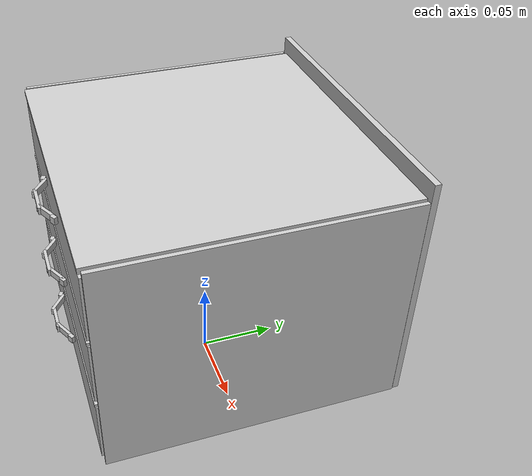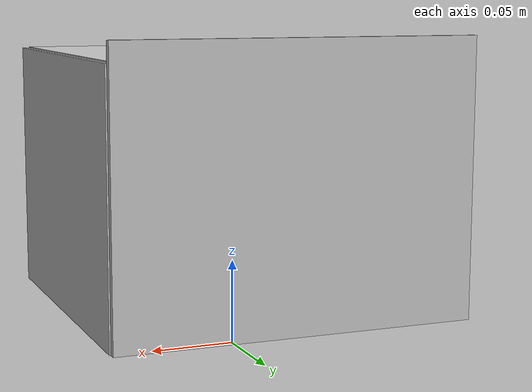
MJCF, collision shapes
<mujoco model="short_cabinet">
  <compiler angle="radian" inertiagrouprange="0 0" autolimits="true" />
  <asset>
    <texture file="../assets/articulated_objects/short_cabinet/base/dark-wood.png" name="tex-base_vis" type="2d" />
    <material name="base_vis" reflectance="0.5" texrepeat="1 1" texture="tex-base_vis" texuniform="false" />
    <mesh name="base_vis_vis" file="../assets/articulated_objects/short_cabinet/base/visual/base_vis_vis.msh" scale="0.05 0.05 0.05" />
    <mesh file="../assets/articulated_objects/short_cabinet/drawer_middle/visual/drawer_middle_vis.msh" name="drawer_middle_vis" scale="0.05 0.05 0.05" />
    <mesh file="../assets/articulated_objects/short_cabinet/drawer_high/visual/drawer_high_vis.msh" name="drawer_high_vis" scale="0.05 0.05 0.05" />
    <mesh file="../assets/articulated_objects/short_cabinet/drawer_low/visual/drawer_low_vis.msh" name="drawer_low_vis" scale="0.05 0.05 0.05" />
  </asset>
  <worldbody>
    <body name="object">
      <body name="base" pos="0 0 0.10" quat="0.5 0.5 -0.5 -0.5">
        <geom solimp="0.998 0.998 0.001" solref="0.001 1" density="100" friction="0.95 0.3 0.1" type="mesh" mesh="base_vis_vis" conaffinity="0" contype="0" group="1" material="base_vis" />
        <geom solimp="0.998 0.998 0.001" solref="0.001 1" density="100" friction="0.95 0.3 0.1" type="box" pos="-0.00000 0.07026 -0.00000" quat="0.00000 0.70711 0.70711 0.00000" size="0.00184 0.09403 0.09676" group="0" rgba="0.8 0.8 0.8 0.3" />
        <geom solimp="0.998 0.998 0.001" solref="0.001 1" density="100" friction="0.95 0.3 0.1" type="box" pos="0.00000 0.02169 -0.00000" quat="0.00000 0.70711 0.70711 0.00000" size="0.00099 0.09403 0.09676" group="0" rgba="0.8 0.8 0.8 0.3" />
        <geom solimp="0.998 0.998 0.001" solref="0.001 1" density="100" friction="0.95 0.3 0.1" type="box" pos="0.00000 -0.02537 -0.00000" quat="0.70711 -0.00000 -0.00000 -0.70711" size="0.00105 0.09403 0.09676" group="0" rgba="0.8 0.8 0.8 0.3" />
        <geom solimp="0.998 0.998 0.001" solref="0.001 1" density="100" friction="0.95 0.3 0.1" type="box" pos="-0.00000 -0.00000 -0.09988" quat="0.70711 0.00000 0.70711 0.00000" size="0.00131 0.07166 0.09238" group="0" rgba="0.8 0.8 0.8 0.3" />
        <geom solimp="0.998 0.998 0.001" solref="0.001 1" density="100" friction="0.95 0.3 0.1" type="box" pos="0.00000 0.00000 0.09997" quat="0.70711 0.00000 -0.70711 0.00000" size="0.00131 0.07166 0.09238" group="0" rgba="0.8 0.8 0.8 0.3" />
        <geom solimp="0.998 0.998 0.001" solref="0.001 1" density="100" friction="0.95 0.3 0.1" type="box" pos="-0.09495 0.00559 -0.00000" quat="0.00000 0.00000 1.00000 0.00000" size="0.00202 0.07713 0.10053" group="0" rgba="0.8 0.8 0.8 0.3" />
        <body name="drawer_middle" pos="0 0 0">
          <inertial pos="0 0 0" mass="3" diaginertia="1 1 1" />
          <joint name="middle_level" type="slide" pos="0 0 0" axis="1 0 0" limited="true" range="-0.005 0.16" damping="50" />
          <site rgba="0 0 0 0" type="box" pos="-0.00168 0.00035 -0.00000" quat="0.00000 0.70711 0.70711 0.00000" size="0.02022 0.08279 0.08821" name="middle_region" />
          <geom solimp="0.998 0.998 0.001" solref="0.001 1" density="100" friction="0.95 0.3 0.1" type="mesh" mesh="drawer_middle_vis" conaffinity="0" contype="0" group="1" material="base_vis" />
          <geom solimp="0.998 0.998 0.001" solref="0.001 1" density="100" friction="0.95 0.3 0.1" type="box" pos="0.08831 -0.00108 -0.00000" quat="0.00000 0.00000 1.00000 0.00000" size="0.00529 0.02070 0.09650" group="0" rgba="0.8 0.8 0.8 0.3" />
          <geom solimp="0.998 0.998 0.001" solref="0.001 1" density="100" friction="0.95 0.3 0.1" type="box" pos="-0.08595 -0.00108 -0.00000" quat="0.00000 0.00000 1.00000 0.00000" size="0.00529 0.02036 0.09775" group="0" rgba="0.8 0.8 0.8 0.3" />
          <geom solimp="0.998 0.998 0.001" solref="0.001 1" density="100" friction="0.95 0.3 0.1" type="box" pos="-0.00000 -0.01632 -0.00000" quat="0.00000 0.70711 0.70711 0.00000" size="0.00223 0.09178 0.09777" group="0" rgba="0.8 0.8 0.8 0.3" />
          <geom solimp="0.998 0.998 0.001" solref="0.001 1" density="100" friction="0.95 0.3 0.1" type="box" pos="0.00129 -0.00162 -0.09253" quat="0.70711 0.00000 0.70711 0.00000" size="0.00363 0.01977 0.08233" group="0" rgba="0.8 0.8 0.8 0.3" />
          <geom solimp="0.998 0.998 0.001" solref="0.001 1" density="100" friction="0.95 0.3 0.1" type="box" pos="0.10191 0.00202 0.00000" quat="0.00000 0.00000 1.00000 0.00000" size="0.00102 0.00228 0.01031" group="0" rgba="0.8 0.8 0.8 0.3" />
          <geom solimp="0.998 0.998 0.001" solref="0.001 1" density="100" friction="0.95 0.3 0.1" type="box" pos="0.09880 0.00202 -0.01341" quat="0.23506 0.00000 -0.97198 -0.00000" size="0.00104 0.00228 0.00806" group="0" rgba="0.8 0.8 0.8 0.3" />
          <geom solimp="0.998 0.998 0.001" solref="0.001 1" density="100" friction="0.95 0.3 0.1" type="box" pos="0.09833 0.00202 0.01356" quat="0.32083 -0.00000 0.94714 -0.00000" size="0.00104 0.00228 0.00806" group="0" rgba="0.8 0.8 0.8 0.3" />
          <geom solimp="0.998 0.998 0.001" solref="0.001 1" density="100" friction="0.95 0.3 0.1" type="box" pos="0.09537 0.00202 0.02104" quat="0.14192 -0.14192 0.69272 0.69272" size="0.00129 0.00203 0.00228" group="0" rgba="0.8 0.8 0.8 0.3" />
          <geom solimp="0.998 0.998 0.001" solref="0.001 1" density="100" friction="0.95 0.3 0.1" type="box" pos="0.09552 0.00202 -0.02089" quat="0.68385 0.68385 0.17987 -0.17987" size="0.00129 0.00203 0.00228" group="0" rgba="0.8 0.8 0.8 0.3" />
          <geom solimp="0.998 0.998 0.001" solref="0.001 1" density="100" friction="0.95 0.3 0.1" type="box" pos="0.00129 -0.00162 0.09299" quat="0.70711 0.00000 0.70711 0.00000" size="0.00363 0.01977 0.08233" group="0" rgba="0.8 0.8 0.8 0.3" />
        </body>
        <body name="drawer_top" pos="0 0 0">
          <inertial pos="0 0 0" mass="3" diaginertia="1 1 1" />
          <joint name="top_region" type="slide" pos="0 0 0" axis="1 0 0" limited="true" range="-0.005 0.16" damping="50" />
          <site rgba="0 0 0 0" type="box" pos="-0.00168 0.04335 -0.00000" quat="0.00000 0.70711 0.70711 0.00000" size="0.02022 0.08279 0.08821" name="top_region" />
          <geom solimp="0.998 0.998 0.001" solref="0.001 1" density="100" friction="0.95 0.3 0.1" type="mesh" mesh="drawer_high_vis" conaffinity="0" contype="0" group="1" material="base_vis" />
          <geom solimp="0.998 0.998 0.001" solref="0.001 1" density="100" friction="0.95 0.3 0.1" type="box" pos="0.08831 0.04491 -0.00000" quat="1.00000 0.00000 0.00000 -0.00000" size="0.00529 0.02070 0.09650" group="0" rgba="0.8 0.8 0.8 0.3" />
          <geom solimp="0.998 0.998 0.001" solref="0.001 1" density="100" friction="0.95 0.3 0.1" type="box" pos="-0.08595 0.04491 0.00000" quat="1.00000 0.00000 0.00000 0.00000" size="0.00529 0.02036 0.09775" group="0" rgba="0.8 0.8 0.8 0.3" />
          <geom solimp="0.998 0.998 0.001" solref="0.001 1" density="100" friction="0.95 0.3 0.1" type="box" pos="-0.00000 0.02966 0.00000" quat="0.00000 -0.70711 -0.70711 -0.00000" size="0.00223 0.09178 0.09777" group="0" rgba="0.8 0.8 0.8 0.3" />
          <geom solimp="0.998 0.998 0.001" solref="0.001 1" density="100" friction="0.95 0.3 0.1" type="box" pos="0.00129 0.04437 -0.09253" quat="0.70711 0.00000 0.70711 0.00000" size="0.00363 0.01977 0.08233" group="0" rgba="0.8 0.8 0.8 0.3" />
          <geom solimp="0.998 0.998 0.001" solref="0.001 1" density="100" friction="0.95 0.3 0.1" type="box" pos="0.10191 0.04801 0.00000" quat="0.00000 0.00000 1.00000 0.00000" size="0.00102 0.00228 0.01031" group="0" rgba="0.8 0.8 0.8 0.3" />
          <geom solimp="0.998 0.998 0.001" solref="0.001 1" density="100" friction="0.95 0.3 0.1" type="box" pos="0.09880 0.04801 -0.01341" quat="0.00000 -0.97198 0.00000 0.23506" size="0.00104 0.00228 0.00806" group="0" rgba="0.8 0.8 0.8 0.3" />
          <geom solimp="0.998 0.998 0.001" solref="0.001 1" density="100" friction="0.95 0.3 0.1" type="box" pos="0.09833 0.04801 0.01356" quat="0.32083 -0.00000 0.94714 -0.00000" size="0.00104 0.00228 0.00806" group="0" rgba="0.8 0.8 0.8 0.3" />
          <geom solimp="0.998 0.998 0.001" solref="0.001 1" density="100" friction="0.95 0.3 0.1" type="box" pos="0.09537 0.04801 0.02104" quat="0.14192 -0.14192 0.69272 0.69272" size="0.00129 0.00203 0.00228" group="0" rgba="0.8 0.8 0.8 0.3" />
          <geom solimp="0.998 0.998 0.001" solref="0.001 1" density="100" friction="0.95 0.3 0.1" type="box" pos="0.09552 0.04801 -0.02089" quat="0.68385 0.68385 0.17987 -0.17987" size="0.00129 0.00203 0.00228" group="0" rgba="0.8 0.8 0.8 0.3" />
          <geom solimp="0.998 0.998 0.001" solref="0.001 1" density="100" friction="0.95 0.3 0.1" type="box" pos="0.00129 0.04437 0.09299" quat="0.70711 0.00000 0.70711 0.00000" size="0.00363 0.01977 0.08233" group="0" rgba="0.8 0.8 0.8 0.3" />
        </body>
        <body name="drawer_bottom" pos="0 0 0">
          <inertial pos="0 0 0" mass="3" diaginertia="1 1 1" />
          <joint name="bottom_region" type="slide" pos="0 0 0" axis="1 0 0" limited="true" range="-0.005 0.16" damping="50" />
          <site rgba="0 0 0 0" type="box" pos="-0.00168 -0.04335 -0.00000" quat="0.00000 0.70711 0.70711 0.00000" size="0.02022 0.08279 0.08821" name="bottom_region" />
          <geom solimp="0.998 0.998 0.001" solref="0.001 1" density="100" friction="0.95 0.3 0.1" type="mesh" mesh="drawer_low_vis" conaffinity="0" contype="0" group="1" material="base_vis" />
          <geom solimp="0.998 0.998 0.001" solref="0.001 1" density="100" friction="0.95 0.3 0.1" type="box" pos="0.08831 -0.04840 -0.00000" quat="0.00000 0.00000 1.00000 0.00000" size="0.00529 0.02070 0.09650" group="0" rgba="0.8 0.8 0.8 0.3" />
          <geom solimp="0.998 0.998 0.001" solref="0.001 1" density="100" friction="0.95 0.3 0.1" type="box" pos="-0.08595 -0.04840 -0.00000" quat="0.00000 0.00000 1.00000 0.00000" size="0.00529 0.02036 0.09775" group="0" rgba="0.8 0.8 0.8 0.3" />
          <geom solimp="0.998 0.998 0.001" solref="0.001 1" density="100" friction="0.95 0.3 0.1" type="box" pos="-0.00000 -0.06364 -0.00000" quat="0.00000 -0.70711 0.70711 0.00000" size="0.00223 0.09178 0.09777" group="0" rgba="0.8 0.8 0.8 0.3" />
          <geom solimp="0.998 0.998 0.001" solref="0.001 1" density="100" friction="0.95 0.3 0.1" type="box" pos="0.00129 -0.04894 -0.09253" quat="0.70711 0.00000 0.70711 0.00000" size="0.00363 0.01977 0.08233" group="0" rgba="0.8 0.8 0.8 0.3" />
          <geom solimp="0.998 0.998 0.001" solref="0.001 1" density="100" friction="0.95 0.3 0.1" type="box" pos="0.10191 -0.04530 0.00000" quat="0.00000 0.00000 1.00000 0.00000" size="0.00102 0.00228 0.01031" group="0" rgba="0.8 0.8 0.8 0.3" />
          <geom solimp="0.998 0.998 0.001" solref="0.001 1" density="100" friction="0.95 0.3 0.1" type="box" pos="0.09880 -0.04530 -0.01341" quat="0.97198 -0.00000 0.23506 -0.00000" size="0.00104 0.00228 0.00806" group="0" rgba="0.8 0.8 0.8 0.3" />
          <geom solimp="0.998 0.998 0.001" solref="0.001 1" density="100" friction="0.95 0.3 0.1" type="box" pos="0.09833 -0.04530 0.01356" quat="0.32083 -0.00000 0.94714 -0.00000" size="0.00104 0.00228 0.00806" group="0" rgba="0.8 0.8 0.8 0.3" />
          <geom solimp="0.998 0.998 0.001" solref="0.001 1" density="100" friction="0.95 0.3 0.1" type="box" pos="0.09537 -0.04530 0.02104" quat="0.14192 -0.14192 0.69272 0.69272" size="0.00129 0.00203 0.00228" group="0" rgba="0.8 0.8 0.8 0.3" />
          <geom solimp="0.998 0.998 0.001" solref="0.001 1" density="100" friction="0.95 0.3 0.1" type="box" pos="0.09552 -0.04530 -0.02089" quat="0.68385 0.68385 0.17987 -0.17987" size="0.00129 0.00203 0.00228" group="0" rgba="0.8 0.8 0.8 0.3" />
          <geom solimp="0.998 0.998 0.001" solref="0.001 1" density="100" friction="0.95 0.3 0.1" type="box" pos="0.00129 -0.04894 0.09299" quat="0.70711 0.00000 0.70711 0.00000" size="0.00363 0.01977 0.08233" group="0" rgba="0.8 0.8 0.8 0.3" />
        </body>
      </body>
    </body>
  </worldbody>
</mujoco>
